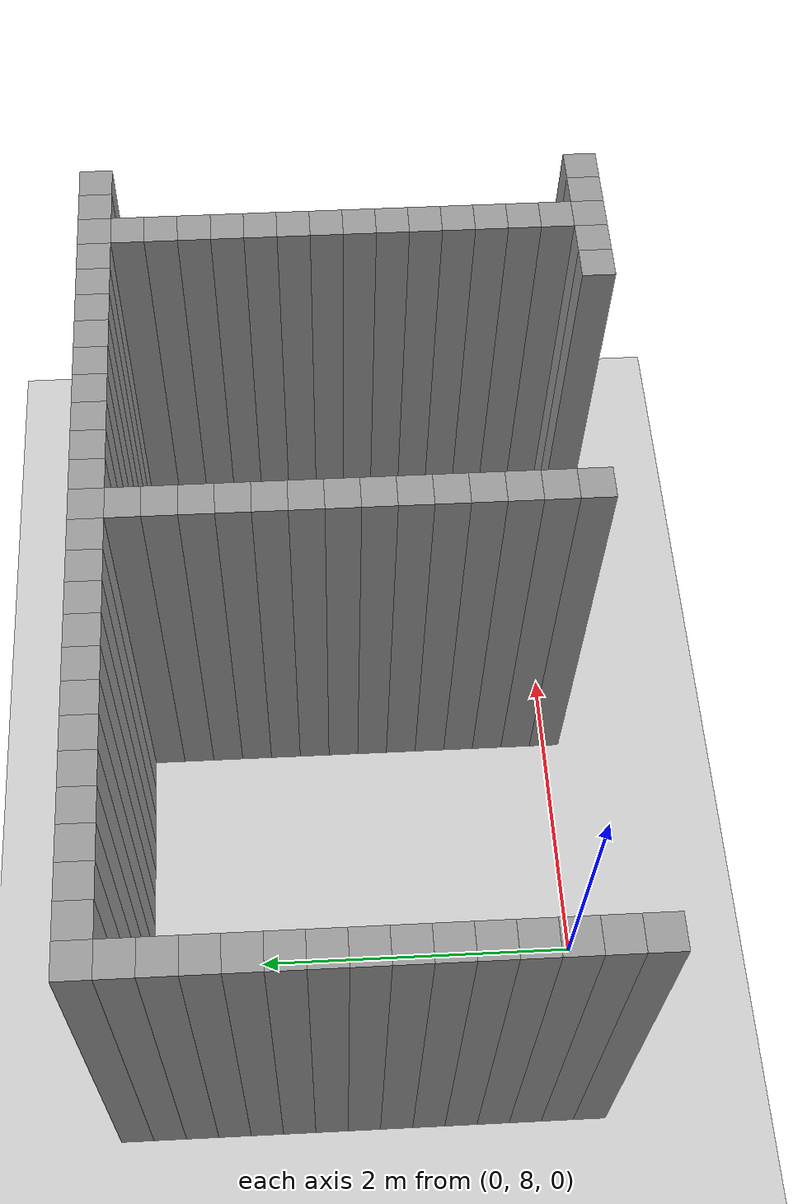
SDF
<sdf version="1.7">
 <world name="default">
  <model name="ground_plane">
   <static>1</static>
   <link name="link">
    <collision name="collision">
     <geometry><plane><normal>0 0 1</normal><size>100 100</size></plane></geometry>
     <surface>
      <contact><collide_bitmask>65535</collide_bitmask></contact>
      <friction><ode><mu>100</mu><mu2>50</mu2></ode></friction>
     </surface>
    </collision>
    <visual name="visual">
     <cast_shadows>0</cast_shadows>
     <geometry><plane><normal>0 0 1</normal><size>100 100</size></plane></geometry>
     <material>
      <script><uri>file://media/materials/scripts/gazebo.material</uri><name>Gazebo/Grey</name></script>
     </material>
    </visual>
   </link>
  </model>
  <model name="image1">
   <pose>-1 -1 0 0 -0 0</pose>
   <link name="Wall_45">
    <collision name="Wall_45_Collision">
     <geometry><box><size>0.2 0.2 3</size></box></geometry>
     <pose>0 0 1.5 0 -0 0</pose>
    </collision>
    <visual name="Wall_45_Visual">
     <pose>0 0 1.5 0 -0 0</pose>
     <geometry><box><size>0.2 0.2 3</size></box></geometry>
     <material>
      <script><uri>file://media/materials/scripts/gazebo.material</uri><name>Gazebo/Grey</name></script>
      <ambient>1 1 1 1</ambient>
     </material>
     <meta><layer>0</layer></meta>
    </visual>
    <pose>0.0 9.0 0 0 -0 0</pose>
   </link>
   <link name="Wall_46">
    <collision name="Wall_46_Collision">
     <geometry><box><size>0.2 0.2 3</size></box></geometry>
     <pose>0 0 1.5 0 -0 0</pose>
    </collision>
    <visual name="Wall_46_Visual">
     <pose>0 0 1.5 0 -0 0</pose>
     <geometry><box><size>0.2 0.2 3</size></box></geometry>
     <material>
      <script><uri>file://media/materials/scripts/gazebo.material</uri><name>Gazebo/Grey</name></script>
      <ambient>1 1 1 1</ambient>
     </material>
     <meta><layer>0</layer></meta>
    </visual>
    <pose>0.0 9.200000000000001 0 0 -0 0</pose>
   </link>
   <link name="Wall_47">
    <collision name="Wall_47_Collision">
     <geometry><box><size>0.2 0.2 3</size></box></geometry>
     <pose>0 0 1.5 0 -0 0</pose>
    </collision>
    <visual name="Wall_47_Visual">
     <pose>0 0 1.5 0 -0 0</pose>
     <geometry><box><size>0.2 0.2 3</size></box></geometry>
     <material>
      <script><uri>file://media/materials/scripts/gazebo.material</uri><name>Gazebo/Grey</name></script>
      <ambient>1 1 1 1</ambient>
     </material>
     <meta><layer>0</layer></meta>
    </visual>
    <pose>0.0 9.4 0 0 -0 0</pose>
   </link>
   <link name="Wall_48">
    <collision name="Wall_48_Collision">
     <geometry><box><size>0.2 0.2 3</size></box></geometry>
     <pose>0 0 1.5 0 -0 0</pose>
    </collision>
    <visual name="Wall_48_Visual">
     <pose>0 0 1.5 0 -0 0</pose>
     <geometry><box><size>0.2 0.2 3</size></box></geometry>
     <material>
      <script><uri>file://media/materials/scripts/gazebo.material</uri><name>Gazebo/Grey</name></script>
      <ambient>1 1 1 1</ambient>
     </material>
     <meta><layer>0</layer></meta>
    </visual>
    <pose>0.0 9.600000000000001 0 0 -0 0</pose>
   </link>
   <link name="Wall_49">
    <collision name="Wall_49_Collision">
     <geometry><box><size>0.2 0.2 3</size></box></geometry>
     <pose>0 0 1.5 0 -0 0</pose>
    </collision>
    <visual name="Wall_49_Visual">
     <pose>0 0 1.5 0 -0 0</pose>
     <geometry><box><size>0.2 0.2 3</size></box></geometry>
     <material>
      <script><uri>file://media/materials/scripts/gazebo.material</uri><name>Gazebo/Grey</name></script>
      <ambient>1 1 1 1</ambient>
     </material>
     <meta><layer>0</layer></meta>
    </visual>
    <pose>0.0 9.8 0 0 -0 0</pose>
   </link>
   <link name="Wall_50">
    <collision name="Wall_50_Collision">
     <geometry><box><size>0.2 0.2 3</size></box></geometry>
     <pose>0 0 1.5 0 -0 0</pose>
    </collision>
    <visual name="Wall_50_Visual">
     <pose>0 0 1.5 0 -0 0</pose>
     <geometry><box><size>0.2 0.2 3</size></box></geometry>
     <material>
      <script><uri>file://media/materials/scripts/gazebo.material</uri><name>Gazebo/Grey</name></script>
      <ambient>1 1 1 1</ambient>
     </material>
     <meta><layer>0</layer></meta>
    </visual>
    <pose>0.0 10.0 0 0 -0 0</pose>
   </link>
   <link name="Wall_51">
    <collision name="Wall_51_Collision">
     <geometry><box><size>0.2 0.2 3</size></box></geometry>
     <pose>0 0 1.5 0 -0 0</pose>
    </collision>
    <visual name="Wall_51_Visual">
     <pose>0 0 1.5 0 -0 0</pose>
     <geometry><box><size>0.2 0.2 3</size></box></geometry>
     <material>
      <script><uri>file://media/materials/scripts/gazebo.material</uri><name>Gazebo/Grey</name></script>
      <ambient>1 1 1 1</ambient>
     </material>
     <meta><layer>0</layer></meta>
    </visual>
    <pose>0.0 10.200000000000001 0 0 -0 0</pose>
   </link>
   <link name="Wall_52">
    <collision name="Wall_52_Collision">
     <geometry><box><size>0.2 0.2 3</size></box></geometry>
     <pose>0 0 1.5 0 -0 0</pose>
    </collision>
    <visual name="Wall_52_Visual">
     <pose>0 0 1.5 0 -0 0</pose>
     <geometry><box><size>0.2 0.2 3</size></box></geometry>
     <material>
      <script><uri>file://media/materials/scripts/gazebo.material</uri><name>Gazebo/Grey</name></script>
      <ambient>1 1 1 1</ambient>
     </material>
     <meta><layer>0</layer></meta>
    </visual>
    <pose>0.0 10.4 0 0 -0 0</pose>
   </link>
   <link name="Wall_53">
    <collision name="Wall_53_Collision">
     <geometry><box><size>0.2 0.2 3</size></box></geometry>
     <pose>0 0 1.5 0 -0 0</pose>
    </collision>
    <visual name="Wall_53_Visual">
     <pose>0 0 1.5 0 -0 0</pose>
     <geometry><box><size>0.2 0.2 3</size></box></geometry>
     <material>
      <script><uri>file://media/materials/scripts/gazebo.material</uri><name>Gazebo/Grey</name></script>
      <ambient>1 1 1 1</ambient>
     </material>
     <meta><layer>0</layer></meta>
    </visual>
    <pose>0.0 10.600000000000001 0 0 -0 0</pose>
   </link>
   <link name="Wall_54">
    <collision name="Wall_54_Collision">
     <geometry><box><size>0.2 0.2 3</size></box></geometry>
     <pose>0 0 1.5 0 -0 0</pose>
    </collision>
    <visual name="Wall_54_Visual">
     <pose>0 0 1.5 0 -0 0</pose>
     <geometry><box><size>0.2 0.2 3</size></box></geometry>
     <material>
      <script><uri>file://media/materials/scripts/gazebo.material</uri><name>Gazebo/Grey</name></script>
      <ambient>1 1 1 1</ambient>
     </material>
     <meta><layer>0</layer></meta>
    </visual>
    <pose>0.0 10.8 0 0 -0 0</pose>
   </link>
   <link name="Wall_55">
    <collision name="Wall_55_Collision">
     <geometry><box><size>0.2 0.2 3</size></box></geometry>
     <pose>0 0 1.5 0 -0 0</pose>
    </collision>
    <visual name="Wall_55_Visual">
     <pose>0 0 1.5 0 -0 0</pose>
     <geometry><box><size>0.2 0.2 3</size></box></geometry>
     <material>
      <script><uri>file://media/materials/scripts/gazebo.material</uri><name>Gazebo/Grey</name></script>
      <ambient>1 1 1 1</ambient>
     </material>
     <meta><layer>0</layer></meta>
    </visual>
    <pose>0.0 11.0 0 0 -0 0</pose>
   </link>
   <link name="Wall_56">
    <collision name="Wall_56_Collision">
     <geometry><box><size>0.2 0.2 3</size></box></geometry>
     <pose>0 0 1.5 0 -0 0</pose>
    </collision>
    <visual name="Wall_56_Visual">
     <pose>0 0 1.5 0 -0 0</pose>
     <geometry><box><size>0.2 0.2 3</size></box></geometry>
     <material>
      <script><uri>file://media/materials/scripts/gazebo.material</uri><name>Gazebo/Grey</name></script>
      <ambient>1 1 1 1</ambient>
     </material>
     <meta><layer>0</layer></meta>
    </visual>
    <pose>0.0 11.200000000000001 0 0 -0 0</pose>
   </link>
   <link name="Wall_57">
    <collision name="Wall_57_Collision">
     <geometry><box><size>0.2 0.2 3</size></box></geometry>
     <pose>0 0 1.5 0 -0 0</pose>
    </collision>
    <visual name="Wall_57_Visual">
     <pose>0 0 1.5 0 -0 0</pose>
     <geometry><box><size>0.2 0.2 3</size></box></geometry>
     <material>
      <script><uri>file://media/materials/scripts/gazebo.material</uri><name>Gazebo/Grey</name></script>
      <ambient>1 1 1 1</ambient>
     </material>
     <meta><layer>0</layer></meta>
    </visual>
    <pose>0.0 11.4 0 0 -0 0</pose>
   </link>
   <link name="Wall_58">
    <collision name="Wall_58_Collision">
     <geometry><box><size>0.2 0.2 3</size></box></geometry>
     <pose>0 0 1.5 0 -0 0</pose>
    </collision>
    <visual name="Wall_58_Visual">
     <pose>0 0 1.5 0 -0 0</pose>
     <geometry><box><size>0.2 0.2 3</size></box></geometry>
     <material>
      <script><uri>file://media/materials/scripts/gazebo.material</uri><name>Gazebo/Grey</name></script>
      <ambient>1 1 1 1</ambient>
     </material>
     <meta><layer>0</layer></meta>
    </visual>
    <pose>0.0 11.600000000000001 0 0 -0 0</pose>
   </link>
   <link name="Wall_59">
    <collision name="Wall_59_Collision">
     <geometry><box><size>0.2 0.2 3</size></box></geometry>
     <pose>0 0 1.5 0 -0 0</pose>
    </collision>
    <visual name="Wall_59_Visual">
     <pose>0 0 1.5 0 -0 0</pose>
     <geometry><box><size>0.2 0.2 3</size></box></geometry>
     <material>
      <script><uri>file://media/materials/scripts/gazebo.material</uri><name>Gazebo/Grey</name></script>
      <ambient>1 1 1 1</ambient>
     </material>
     <meta><layer>0</layer></meta>
    </visual>
    <pose>0.0 11.8 0 0 -0 0</pose>
   </link>
   <link name="Wall_64">
    <collision name="Wall_64_Collision">
     <geometry><box><size>0.2 0.2 3</size></box></geometry>
     <pose>0 0 1.5 0 -0 0</pose>
    </collision>
    <visual name="Wall_64_Visual">
     <pose>0 0 1.5 0 -0 0</pose>
     <geometry><box><size>0.2 0.2 3</size></box></geometry>
     <material>
      <script><uri>file://media/materials/scripts/gazebo.material</uri><name>Gazebo/Grey</name></script>
      <ambient>1 1 1 1</ambient>
     </material>
     <meta><layer>0</layer></meta>
    </visual>
    <pose>0.2 11.8 0 0 -0 0</pose>
   </link>
   <link name="Wall_69">
    <collision name="Wall_69_Collision">
     <geometry><box><size>0.2 0.2 3</size></box></geometry>
     <pose>0 0 1.5 0 -0 0</pose>
    </collision>
    <visual name="Wall_69_Visual">
     <pose>0 0 1.5 0 -0 0</pose>
     <geometry><box><size>0.2 0.2 3</size></box></geometry>
     <material>
      <script><uri>file://media/materials/scripts/gazebo.material</uri><name>Gazebo/Grey</name></script>
      <ambient>1 1 1 1</ambient>
     </material>
     <meta><layer>0</layer></meta>
    </visual>
    <pose>0.4 11.8 0 0 -0 0</pose>
   </link>
   <link name="Wall_74">
    <collision name="Wall_74_Collision">
     <geometry><box><size>0.2 0.2 3</size></box></geometry>
     <pose>0 0 1.5 0 -0 0</pose>
    </collision>
    <visual name="Wall_74_Visual">
     <pose>0 0 1.5 0 -0 0</pose>
     <geometry><box><size>0.2 0.2 3</size></box></geometry>
     <material>
      <script><uri>file://media/materials/scripts/gazebo.material</uri><name>Gazebo/Grey</name></script>
      <ambient>1 1 1 1</ambient>
     </material>
     <meta><layer>0</layer></meta>
    </visual>
    <pose>0.6000000000000001 11.8 0 0 -0 0</pose>
   </link>
   <link name="Wall_78">
    <collision name="Wall_78_Collision">
     <geometry><box><size>0.2 0.2 3</size></box></geometry>
     <pose>0 0 1.5 0 -0 0</pose>
    </collision>
    <visual name="Wall_78_Visual">
     <pose>0 0 1.5 0 -0 0</pose>
     <geometry><box><size>0.2 0.2 3</size></box></geometry>
     <material>
      <script><uri>file://media/materials/scripts/gazebo.material</uri><name>Gazebo/Grey</name></script>
      <ambient>1 1 1 1</ambient>
     </material>
     <meta><layer>0</layer></meta>
    </visual>
    <pose>0.8 11.8 0 0 -0 0</pose>
   </link>
   <link name="Wall_82">
    <collision name="Wall_82_Collision">
     <geometry><box><size>0.2 0.2 3</size></box></geometry>
     <pose>0 0 1.5 0 -0 0</pose>
    </collision>
    <visual name="Wall_82_Visual">
     <pose>0 0 1.5 0 -0 0</pose>
     <geometry><box><size>0.2 0.2 3</size></box></geometry>
     <material>
      <script><uri>file://media/materials/scripts/gazebo.material</uri><name>Gazebo/Grey</name></script>
      <ambient>1 1 1 1</ambient>
     </material>
     <meta><layer>0</layer></meta>
    </visual>
    <pose>1.0 11.8 0 0 -0 0</pose>
   </link>
   <link name="Wall_86">
    <collision name="Wall_86_Collision">
     <geometry><box><size>0.2 0.2 3</size></box></geometry>
     <pose>0 0 1.5 0 -0 0</pose>
    </collision>
    <visual name="Wall_86_Visual">
     <pose>0 0 1.5 0 -0 0</pose>
     <geometry><box><size>0.2 0.2 3</size></box></geometry>
     <material>
      <script><uri>file://media/materials/scripts/gazebo.material</uri><name>Gazebo/Grey</name></script>
      <ambient>1 1 1 1</ambient>
     </material>
     <meta><layer>0</layer></meta>
    </visual>
    <pose>1.2000000000000002 11.8 0 0 -0 0</pose>
   </link>
   <link name="Wall_90">
    <collision name="Wall_90_Collision">
     <geometry><box><size>0.2 0.2 3</size></box></geometry>
     <pose>0 0 1.5 0 -0 0</pose>
    </collision>
    <visual name="Wall_90_Visual">
     <pose>0 0 1.5 0 -0 0</pose>
     <geometry><box><size>0.2 0.2 3</size></box></geometry>
     <material>
      <script><uri>file://media/materials/scripts/gazebo.material</uri><name>Gazebo/Grey</name></script>
      <ambient>1 1 1 1</ambient>
     </material>
     <meta><layer>0</layer></meta>
    </visual>
    <pose>1.4000000000000001 11.8 0 0 -0 0</pose>
   </link>
   <link name="Wall_94">
    <collision name="Wall_94_Collision">
     <geometry><box><size>0.2 0.2 3</size></box></geometry>
     <pose>0 0 1.5 0 -0 0</pose>
    </collision>
    <visual name="Wall_94_Visual">
     <pose>0 0 1.5 0 -0 0</pose>
     <geometry><box><size>0.2 0.2 3</size></box></geometry>
     <material>
      <script><uri>file://media/materials/scripts/gazebo.material</uri><name>Gazebo/Grey</name></script>
      <ambient>1 1 1 1</ambient>
     </material>
     <meta><layer>0</layer></meta>
    </visual>
    <pose>1.6 11.8 0 0 -0 0</pose>
   </link>
   <link name="Wall_116">
    <collision name="Wall_116_Collision">
     <geometry><box><size>0.2 0.2 3</size></box></geometry>
     <pose>0 0 1.5 0 -0 0</pose>
    </collision>
    <visual name="Wall_116_Visual">
     <pose>0 0 1.5 0 -0 0</pose>
     <geometry><box><size>0.2 0.2 3</size></box></geometry>
     <material>
      <script><uri>file://media/materials/scripts/gazebo.material</uri><name>Gazebo/Grey</name></script>
      <ambient>1 1 1 1</ambient>
     </material>
     <meta><layer>0</layer></meta>
    </visual>
    <pose>1.8 11.8 0 0 -0 0</pose>
   </link>
   <link name="Wall_121">
    <collision name="Wall_121_Collision">
     <geometry><box><size>0.2 0.2 3</size></box></geometry>
     <pose>0 0 1.5 0 -0 0</pose>
    </collision>
    <visual name="Wall_121_Visual">
     <pose>0 0 1.5 0 -0 0</pose>
     <geometry><box><size>0.2 0.2 3</size></box></geometry>
     <material>
      <script><uri>file://media/materials/scripts/gazebo.material</uri><name>Gazebo/Grey</name></script>
      <ambient>1 1 1 1</ambient>
     </material>
     <meta><layer>0</layer></meta>
    </visual>
    <pose>2.0 11.8 0 0 -0 0</pose>
   </link>
   <link name="Wall_126">
    <collision name="Wall_126_Collision">
     <geometry><box><size>0.2 0.2 3</size></box></geometry>
     <pose>0 0 1.5 0 -0 0</pose>
    </collision>
    <visual name="Wall_126_Visual">
     <pose>0 0 1.5 0 -0 0</pose>
     <geometry><box><size>0.2 0.2 3</size></box></geometry>
     <material>
      <script><uri>file://media/materials/scripts/gazebo.material</uri><name>Gazebo/Grey</name></script>
      <ambient>1 1 1 1</ambient>
     </material>
     <meta><layer>0</layer></meta>
    </visual>
    <pose>2.2 11.8 0 0 -0 0</pose>
   </link>
   <link name="Wall_131">
    <collision name="Wall_131_Collision">
     <geometry><box><size>0.2 0.2 3</size></box></geometry>
     <pose>0 0 1.5 0 -0 0</pose>
    </collision>
    <visual name="Wall_131_Visual">
     <pose>0 0 1.5 0 -0 0</pose>
     <geometry><box><size>0.2 0.2 3</size></box></geometry>
     <material>
      <script><uri>file://media/materials/scripts/gazebo.material</uri><name>Gazebo/Grey</name></script>
      <ambient>1 1 1 1</ambient>
     </material>
     <meta><layer>0</layer></meta>
    </visual>
    <pose>2.4000000000000004 11.8 0 0 -0 0</pose>
   </link>
   <link name="Wall_136">
    <collision name="Wall_136_Collision">
     <geometry><box><size>0.2 0.2 3</size></box></geometry>
     <pose>0 0 1.5 0 -0 0</pose>
    </collision>
    <visual name="Wall_136_Visual">
     <pose>0 0 1.5 0 -0 0</pose>
     <geometry><box><size>0.2 0.2 3</size></box></geometry>
     <material>
      <script><uri>file://media/materials/scripts/gazebo.material</uri><name>Gazebo/Grey</name></script>
      <ambient>1 1 1 1</ambient>
     </material>
     <meta><layer>0</layer></meta>
    </visual>
    <pose>2.6 9.0 0 0 -0 0</pose>
   </link>
   <link name="Wall_137">
    <collision name="Wall_137_Collision">
     <geometry><box><size>0.2 0.2 3</size></box></geometry>
     <pose>0 0 1.5 0 -0 0</pose>
    </collision>
    <visual name="Wall_137_Visual">
     <pose>0 0 1.5 0 -0 0</pose>
     <geometry><box><size>0.2 0.2 3</size></box></geometry>
     <material>
      <script><uri>file://media/materials/scripts/gazebo.material</uri><name>Gazebo/Grey</name></script>
      <ambient>1 1 1 1</ambient>
     </material>
     <meta><layer>0</layer></meta>
    </visual>
    <pose>2.6 9.200000000000001 0 0 -0 0</pose>
   </link>
   <link name="Wall_138">
    <collision name="Wall_138_Collision">
     <geometry><box><size>0.2 0.2 3</size></box></geometry>
     <pose>0 0 1.5 0 -0 0</pose>
    </collision>
    <visual name="Wall_138_Visual">
     <pose>0 0 1.5 0 -0 0</pose>
     <geometry><box><size>0.2 0.2 3</size></box></geometry>
     <material>
      <script><uri>file://media/materials/scripts/gazebo.material</uri><name>Gazebo/Grey</name></script>
      <ambient>1 1 1 1</ambient>
     </material>
     <meta><layer>0</layer></meta>
    </visual>
    <pose>2.6 9.4 0 0 -0 0</pose>
   </link>
   <link name="Wall_139">
    <collision name="Wall_139_Collision">
     <geometry><box><size>0.2 0.2 3</size></box></geometry>
     <pose>0 0 1.5 0 -0 0</pose>
    </collision>
    <visual name="Wall_139_Visual">
     <pose>0 0 1.5 0 -0 0</pose>
     <geometry><box><size>0.2 0.2 3</size></box></geometry>
     <material>
      <script><uri>file://media/materials/scripts/gazebo.material</uri><name>Gazebo/Grey</name></script>
      <ambient>1 1 1 1</ambient>
     </material>
     <meta><layer>0</layer></meta>
    </visual>
    <pose>2.6 9.600000000000001 0 0 -0 0</pose>
   </link>
   <link name="Wall_140">
    <collision name="Wall_140_Collision">
     <geometry><box><size>0.2 0.2 3</size></box></geometry>
     <pose>0 0 1.5 0 -0 0</pose>
    </collision>
    <visual name="Wall_140_Visual">
     <pose>0 0 1.5 0 -0 0</pose>
     <geometry><box><size>0.2 0.2 3</size></box></geometry>
     <material>
      <script><uri>file://media/materials/scripts/gazebo.material</uri><name>Gazebo/Grey</name></script>
      <ambient>1 1 1 1</ambient>
     </material>
     <meta><layer>0</layer></meta>
    </visual>
    <pose>2.6 9.8 0 0 -0 0</pose>
   </link>
   <link name="Wall_141">
    <collision name="Wall_141_Collision">
     <geometry><box><size>0.2 0.2 3</size></box></geometry>
     <pose>0 0 1.5 0 -0 0</pose>
    </collision>
    <visual name="Wall_141_Visual">
     <pose>0 0 1.5 0 -0 0</pose>
     <geometry><box><size>0.2 0.2 3</size></box></geometry>
     <material>
      <script><uri>file://media/materials/scripts/gazebo.material</uri><name>Gazebo/Grey</name></script>
      <ambient>1 1 1 1</ambient>
     </material>
     <meta><layer>0</layer></meta>
    </visual>
    <pose>2.6 10.0 0 0 -0 0</pose>
   </link>
   <link name="Wall_142">
    <collision name="Wall_142_Collision">
     <geometry><box><size>0.2 0.2 3</size></box></geometry>
     <pose>0 0 1.5 0 -0 0</pose>
    </collision>
    <visual name="Wall_142_Visual">
     <pose>0 0 1.5 0 -0 0</pose>
     <geometry><box><size>0.2 0.2 3</size></box></geometry>
     <material>
      <script><uri>file://media/materials/scripts/gazebo.material</uri><name>Gazebo/Grey</name></script>
      <ambient>1 1 1 1</ambient>
     </material>
     <meta><layer>0</layer></meta>
    </visual>
    <pose>2.6 10.200000000000001 0 0 -0 0</pose>
   </link>
   <link name="Wall_143">
    <collision name="Wall_143_Collision">
     <geometry><box><size>0.2 0.2 3</size></box></geometry>
     <pose>0 0 1.5 0 -0 0</pose>
    </collision>
    <visual name="Wall_143_Visual">
     <pose>0 0 1.5 0 -0 0</pose>
     <geometry><box><size>0.2 0.2 3</size></box></geometry>
     <material>
      <script><uri>file://media/materials/scripts/gazebo.material</uri><name>Gazebo/Grey</name></script>
      <ambient>1 1 1 1</ambient>
     </material>
     <meta><layer>0</layer></meta>
    </visual>
    <pose>2.6 10.4 0 0 -0 0</pose>
   </link>
   <link name="Wall_144">
    <collision name="Wall_144_Collision">
     <geometry><box><size>0.2 0.2 3</size></box></geometry>
     <pose>0 0 1.5 0 -0 0</pose>
    </collision>
    <visual name="Wall_144_Visual">
     <pose>0 0 1.5 0 -0 0</pose>
     <geometry><box><size>0.2 0.2 3</size></box></geometry>
     <material>
      <script><uri>file://media/materials/scripts/gazebo.material</uri><name>Gazebo/Grey</name></script>
      <ambient>1 1 1 1</ambient>
     </material>
     <meta><layer>0</layer></meta>
    </visual>
    <pose>2.6 10.600000000000001 0 0 -0 0</pose>
   </link>
   <link name="Wall_145">
    <collision name="Wall_145_Collision">
     <geometry><box><size>0.2 0.2 3</size></box></geometry>
     <pose>0 0 1.5 0 -0 0</pose>
    </collision>
    <visual name="Wall_145_Visual">
     <pose>0 0 1.5 0 -0 0</pose>
     <geometry><box><size>0.2 0.2 3</size></box></geometry>
     <material>
      <script><uri>file://media/materials/scripts/gazebo.material</uri><name>Gazebo/Grey</name></script>
      <ambient>1 1 1 1</ambient>
     </material>
     <meta><layer>0</layer></meta>
    </visual>
    <pose>2.6 10.8 0 0 -0 0</pose>
   </link>
   <link name="Wall_146">
    <collision name="Wall_146_Collision">
     <geometry><box><size>0.2 0.2 3</size></box></geometry>
     <pose>0 0 1.5 0 -0 0</pose>
    </collision>
    <visual name="Wall_146_Visual">
     <pose>0 0 1.5 0 -0 0</pose>
     <geometry><box><size>0.2 0.2 3</size></box></geometry>
     <material>
      <script><uri>file://media/materials/scripts/gazebo.material</uri><name>Gazebo/Grey</name></script>
      <ambient>1 1 1 1</ambient>
     </material>
     <meta><layer>0</layer></meta>
    </visual>
    <pose>2.6 11.0 0 0 -0 0</pose>
   </link>
   <link name="Wall_147">
    <collision name="Wall_147_Collision">
     <geometry><box><size>0.2 0.2 3</size></box></geometry>
     <pose>0 0 1.5 0 -0 0</pose>
    </collision>
    <visual name="Wall_147_Visual">
     <pose>0 0 1.5 0 -0 0</pose>
     <geometry><box><size>0.2 0.2 3</size></box></geometry>
     <material>
      <script><uri>file://media/materials/scripts/gazebo.material</uri><name>Gazebo/Grey</name></script>
      <ambient>1 1 1 1</ambient>
     </material>
     <meta><layer>0</layer></meta>
    </visual>
    <pose>2.6 11.200000000000001 0 0 -0 0</pose>
   </link>
   <link name="Wall_148">
    <collision name="Wall_148_Collision">
     <geometry><box><size>0.2 0.2 3</size></box></geometry>
     <pose>0 0 1.5 0 -0 0</pose>
    </collision>
    <visual name="Wall_148_Visual">
     <pose>0 0 1.5 0 -0 0</pose>
     <geometry><box><size>0.2 0.2 3</size></box></geometry>
     <material>
      <script><uri>file://media/materials/scripts/gazebo.material</uri><name>Gazebo/Grey</name></script>
      <ambient>1 1 1 1</ambient>
     </material>
     <meta><layer>0</layer></meta>
    </visual>
    <pose>2.6 11.4 0 0 -0 0</pose>
   </link>
   <link name="Wall_149">
    <collision name="Wall_149_Collision">
     <geometry><box><size>0.2 0.2 3</size></box></geometry>
     <pose>0 0 1.5 0 -0 0</pose>
    </collision>
    <visual name="Wall_149_Visual">
     <pose>0 0 1.5 0 -0 0</pose>
     <geometry><box><size>0.2 0.2 3</size></box></geometry>
     <material>
      <script><uri>file://media/materials/scripts/gazebo.material</uri><name>Gazebo/Grey</name></script>
      <ambient>1 1 1 1</ambient>
     </material>
     <meta><layer>0</layer></meta>
    </visual>
    <pose>2.6 11.600000000000001 0 0 -0 0</pose>
   </link>
   <link name="Wall_150">
    <collision name="Wall_150_Collision">
     <geometry><box><size>0.2 0.2 3</size></box></geometry>
     <pose>0 0 1.5 0 -0 0</pose>
    </collision>
    <visual name="Wall_150_Visual">
     <pose>0 0 1.5 0 -0 0</pose>
     <geometry><box><size>0.2 0.2 3</size></box></geometry>
     <material>
      <script><uri>file://media/materials/scripts/gazebo.material</uri><name>Gazebo/Grey</name></script>
      <ambient>1 1 1 1</ambient>
     </material>
     <meta><layer>0</layer></meta>
    </visual>
    <pose>2.6 11.8 0 0 -0 0</pose>
   </link>
   <link name="Wall_155">
    <collision name="Wall_155_Collision">
     <geometry><box><size>0.2 0.2 3</size></box></geometry>
     <pose>0 0 1.5 0 -0 0</pose>
    </collision>
    <visual name="Wall_155_Visual">
     <pose>0 0 1.5 0 -0 0</pose>
     <geometry><box><size>0.2 0.2 3</size></box></geometry>
     <material>
      <script><uri>file://media/materials/scripts/gazebo.material</uri><name>Gazebo/Grey</name></script>
      <ambient>1 1 1 1</ambient>
     </material>
     <meta><layer>0</layer></meta>
    </visual>
    <pose>2.8000000000000003 11.8 0 0 -0 0</pose>
   </link>
   <link name="Wall_161">
    <collision name="Wall_161_Collision">
     <geometry><box><size>0.2 0.2 3</size></box></geometry>
     <pose>0 0 1.5 0 -0 0</pose>
    </collision>
    <visual name="Wall_161_Visual">
     <pose>0 0 1.5 0 -0 0</pose>
     <geometry><box><size>0.2 0.2 3</size></box></geometry>
     <material>
      <script><uri>file://media/materials/scripts/gazebo.material</uri><name>Gazebo/Grey</name></script>
      <ambient>1 1 1 1</ambient>
     </material>
     <meta><layer>0</layer></meta>
    </visual>
    <pose>3.0 11.8 0 0 -0 0</pose>
   </link>
   <link name="Wall_163">
    <collision name="Wall_163_Collision">
     <geometry><box><size>0.2 0.2 3</size></box></geometry>
     <pose>0 0 1.5 0 -0 0</pose>
    </collision>
    <visual name="Wall_163_Visual">
     <pose>0 0 1.5 0 -0 0</pose>
     <geometry><box><size>0.2 0.2 3</size></box></geometry>
     <material>
      <script><uri>file://media/materials/scripts/gazebo.material</uri><name>Gazebo/Grey</name></script>
      <ambient>1 1 1 1</ambient>
     </material>
     <meta><layer>0</layer></meta>
    </visual>
    <pose>3.2 11.8 0 0 -0 0</pose>
   </link>
   <link name="Wall_165">
    <collision name="Wall_165_Collision">
     <geometry><box><size>0.2 0.2 3</size></box></geometry>
     <pose>0 0 1.5 0 -0 0</pose>
    </collision>
    <visual name="Wall_165_Visual">
     <pose>0 0 1.5 0 -0 0</pose>
     <geometry><box><size>0.2 0.2 3</size></box></geometry>
     <material>
      <script><uri>file://media/materials/scripts/gazebo.material</uri><name>Gazebo/Grey</name></script>
      <ambient>1 1 1 1</ambient>
     </material>
     <meta><layer>0</layer></meta>
    </visual>
    <pose>3.4000000000000004 11.8 0 0 -0 0</pose>
   </link>
   <link name="Wall_185">
    <collision name="Wall_185_Collision">
     <geometry><box><size>0.2 0.2 3</size></box></geometry>
     <pose>0 0 1.5 0 -0 0</pose>
    </collision>
    <visual name="Wall_185_Visual">
     <pose>0 0 1.5 0 -0 0</pose>
     <geometry><box><size>0.2 0.2 3</size></box></geometry>
     <material>
      <script><uri>file://media/materials/scripts/gazebo.material</uri><name>Gazebo/Grey</name></script>
      <ambient>1 1 1 1</ambient>
     </material>
     <meta><layer>0</layer></meta>
    </visual>
    <pose>3.6 11.8 0 0 -0 0</pose>
   </link>
   <link name="Wall_187">
    <collision name="Wall_187_Collision">
     <geometry><box><size>0.2 0.2 3</size></box></geometry>
     <pose>0 0 1.5 0 -0 0</pose>
    </collision>
    <visual name="Wall_187_Visual">
     <pose>0 0 1.5 0 -0 0</pose>
     <geometry><box><size>0.2 0.2 3</size></box></geometry>
     <material>
      <script><uri>file://media/materials/scripts/gazebo.material</uri><name>Gazebo/Grey</name></script>
      <ambient>1 1 1 1</ambient>
     </material>
     <meta><layer>0</layer></meta>
    </visual>
    <pose>3.8000000000000003 11.8 0 0 -0 0</pose>
   </link>
   <link name="Wall_189">
    <collision name="Wall_189_Collision">
     <geometry><box><size>0.2 0.2 3</size></box></geometry>
     <pose>0 0 1.5 0 -0 0</pose>
    </collision>
    <visual name="Wall_189_Visual">
     <pose>0 0 1.5 0 -0 0</pose>
     <geometry><box><size>0.2 0.2 3</size></box></geometry>
     <material>
      <script><uri>file://media/materials/scripts/gazebo.material</uri><name>Gazebo/Grey</name></script>
      <ambient>1 1 1 1</ambient>
     </material>
     <meta><layer>0</layer></meta>
    </visual>
    <pose>4.0 11.8 0 0 -0 0</pose>
   </link>
   <link name="Wall_191">
    <collision name="Wall_191_Collision">
     <geometry><box><size>0.2 0.2 3</size></box></geometry>
     <pose>0 0 1.5 0 -0 0</pose>
    </collision>
    <visual name="Wall_191_Visual">
     <pose>0 0 1.5 0 -0 0</pose>
     <geometry><box><size>0.2 0.2 3</size></box></geometry>
     <material>
      <script><uri>file://media/materials/scripts/gazebo.material</uri><name>Gazebo/Grey</name></script>
      <ambient>1 1 1 1</ambient>
     </material>
     <meta><layer>0</layer></meta>
    </visual>
    <pose>4.2 8.8 0 0 -0 0</pose>
   </link>
   <link name="Wall_192">
    <collision name="Wall_192_Collision">
     <geometry><box><size>0.2 0.2 3</size></box></geometry>
     <pose>0 0 1.5 0 -0 0</pose>
    </collision>
    <visual name="Wall_192_Visual">
     <pose>0 0 1.5 0 -0 0</pose>
     <geometry><box><size>0.2 0.2 3</size></box></geometry>
     <material>
      <script><uri>file://media/materials/scripts/gazebo.material</uri><name>Gazebo/Grey</name></script>
      <ambient>1 1 1 1</ambient>
     </material>
     <meta><layer>0</layer></meta>
    </visual>
    <pose>4.2 11.8 0 0 -0 0</pose>
   </link>
   <link name="Wall_194">
    <collision name="Wall_194_Collision">
     <geometry><box><size>0.2 0.2 3</size></box></geometry>
     <pose>0 0 1.5 0 -0 0</pose>
    </collision>
    <visual name="Wall_194_Visual">
     <pose>0 0 1.5 0 -0 0</pose>
     <geometry><box><size>0.2 0.2 3</size></box></geometry>
     <material>
      <script><uri>file://media/materials/scripts/gazebo.material</uri><name>Gazebo/Grey</name></script>
      <ambient>1 1 1 1</ambient>
     </material>
     <meta><layer>0</layer></meta>
    </visual>
    <pose>4.4 8.8 0 0 -0 0</pose>
   </link>
   <link name="Wall_195">
    <collision name="Wall_195_Collision">
     <geometry><box><size>0.2 0.2 3</size></box></geometry>
     <pose>0 0 1.5 0 -0 0</pose>
    </collision>
    <visual name="Wall_195_Visual">
     <pose>0 0 1.5 0 -0 0</pose>
     <geometry><box><size>0.2 0.2 3</size></box></geometry>
     <material>
      <script><uri>file://media/materials/scripts/gazebo.material</uri><name>Gazebo/Grey</name></script>
      <ambient>1 1 1 1</ambient>
     </material>
     <meta><layer>0</layer></meta>
    </visual>
    <pose>4.4 11.8 0 0 -0 0</pose>
   </link>
   <link name="Wall_197">
    <collision name="Wall_197_Collision">
     <geometry><box><size>0.2 0.2 3</size></box></geometry>
     <pose>0 0 1.5 0 -0 0</pose>
    </collision>
    <visual name="Wall_197_Visual">
     <pose>0 0 1.5 0 -0 0</pose>
     <geometry><box><size>0.2 0.2 3</size></box></geometry>
     <material>
      <script><uri>file://media/materials/scripts/gazebo.material</uri><name>Gazebo/Grey</name></script>
      <ambient>1 1 1 1</ambient>
     </material>
     <meta><layer>0</layer></meta>
    </visual>
    <pose>4.6000000000000005 8.8 0 0 -0 0</pose>
   </link>
   <link name="Wall_198">
    <collision name="Wall_198_Collision">
     <geometry><box><size>0.2 0.2 3</size></box></geometry>
     <pose>0 0 1.5 0 -0 0</pose>
    </collision>
    <visual name="Wall_198_Visual">
     <pose>0 0 1.5 0 -0 0</pose>
     <geometry><box><size>0.2 0.2 3</size></box></geometry>
     <material>
      <script><uri>file://media/materials/scripts/gazebo.material</uri><name>Gazebo/Grey</name></script>
      <ambient>1 1 1 1</ambient>
     </material>
     <meta><layer>0</layer></meta>
    </visual>
    <pose>4.6000000000000005 9.0 0 0 -0 0</pose>
   </link>
   <link name="Wall_199">
    <collision name="Wall_199_Collision">
     <geometry><box><size>0.2 0.2 3</size></box></geometry>
     <pose>0 0 1.5 0 -0 0</pose>
    </collision>
    <visual name="Wall_199_Visual">
     <pose>0 0 1.5 0 -0 0</pose>
     <geometry><box><size>0.2 0.2 3</size></box></geometry>
     <material>
      <script><uri>file://media/materials/scripts/gazebo.material</uri><name>Gazebo/Grey</name></script>
      <ambient>1 1 1 1</ambient>
     </material>
     <meta><layer>0</layer></meta>
    </visual>
    <pose>4.6000000000000005 9.200000000000001 0 0 -0 0</pose>
   </link>
   <link name="Wall_200">
    <collision name="Wall_200_Collision">
     <geometry><box><size>0.2 0.2 3</size></box></geometry>
     <pose>0 0 1.5 0 -0 0</pose>
    </collision>
    <visual name="Wall_200_Visual">
     <pose>0 0 1.5 0 -0 0</pose>
     <geometry><box><size>0.2 0.2 3</size></box></geometry>
     <material>
      <script><uri>file://media/materials/scripts/gazebo.material</uri><name>Gazebo/Grey</name></script>
      <ambient>1 1 1 1</ambient>
     </material>
     <meta><layer>0</layer></meta>
    </visual>
    <pose>4.6000000000000005 9.4 0 0 -0 0</pose>
   </link>
   <link name="Wall_201">
    <collision name="Wall_201_Collision">
     <geometry><box><size>0.2 0.2 3</size></box></geometry>
     <pose>0 0 1.5 0 -0 0</pose>
    </collision>
    <visual name="Wall_201_Visual">
     <pose>0 0 1.5 0 -0 0</pose>
     <geometry><box><size>0.2 0.2 3</size></box></geometry>
     <material>
      <script><uri>file://media/materials/scripts/gazebo.material</uri><name>Gazebo/Grey</name></script>
      <ambient>1 1 1 1</ambient>
     </material>
     <meta><layer>0</layer></meta>
    </visual>
    <pose>4.6000000000000005 9.600000000000001 0 0 -0 0</pose>
   </link>
   <link name="Wall_202">
    <collision name="Wall_202_Collision">
     <geometry><box><size>0.2 0.2 3</size></box></geometry>
     <pose>0 0 1.5 0 -0 0</pose>
    </collision>
    <visual name="Wall_202_Visual">
     <pose>0 0 1.5 0 -0 0</pose>
     <geometry><box><size>0.2 0.2 3</size></box></geometry>
     <material>
      <script><uri>file://media/materials/scripts/gazebo.material</uri><name>Gazebo/Grey</name></script>
      <ambient>1 1 1 1</ambient>
     </material>
     <meta><layer>0</layer></meta>
    </visual>
    <pose>4.6000000000000005 9.8 0 0 -0 0</pose>
   </link>
   <link name="Wall_203">
    <collision name="Wall_203_Collision">
     <geometry><box><size>0.2 0.2 3</size></box></geometry>
     <pose>0 0 1.5 0 -0 0</pose>
    </collision>
    <visual name="Wall_203_Visual">
     <pose>0 0 1.5 0 -0 0</pose>
     <geometry><box><size>0.2 0.2 3</size></box></geometry>
     <material>
      <script><uri>file://media/materials/scripts/gazebo.material</uri><name>Gazebo/Grey</name></script>
      <ambient>1 1 1 1</ambient>
     </material>
     <meta><layer>0</layer></meta>
    </visual>
    <pose>4.6000000000000005 10.0 0 0 -0 0</pose>
   </link>
   <link name="Wall_204">
    <collision name="Wall_204_Collision">
     <geometry><box><size>0.2 0.2 3</size></box></geometry>
     <pose>0 0 1.5 0 -0 0</pose>
    </collision>
    <visual name="Wall_204_Visual">
     <pose>0 0 1.5 0 -0 0</pose>
     <geometry><box><size>0.2 0.2 3</size></box></geometry>
     <material>
      <script><uri>file://media/materials/scripts/gazebo.material</uri><name>Gazebo/Grey</name></script>
      <ambient>1 1 1 1</ambient>
     </material>
     <meta><layer>0</layer></meta>
    </visual>
    <pose>4.6000000000000005 10.200000000000001 0 0 -0 0</pose>
   </link>
   <link name="Wall_205">
    <collision name="Wall_205_Collision">
     <geometry><box><size>0.2 0.2 3</size></box></geometry>
     <pose>0 0 1.5 0 -0 0</pose>
    </collision>
    <visual name="Wall_205_Visual">
     <pose>0 0 1.5 0 -0 0</pose>
     <geometry><box><size>0.2 0.2 3</size></box></geometry>
     <material>
      <script><uri>file://media/materials/scripts/gazebo.material</uri><name>Gazebo/Grey</name></script>
      <ambient>1 1 1 1</ambient>
     </material>
     <meta><layer>0</layer></meta>
    </visual>
    <pose>4.6000000000000005 10.4 0 0 -0 0</pose>
   </link>
   <link name="Wall_206">
    <collision name="Wall_206_Collision">
     <geometry><box><size>0.2 0.2 3</size></box></geometry>
     <pose>0 0 1.5 0 -0 0</pose>
    </collision>
    <visual name="Wall_206_Visual">
     <pose>0 0 1.5 0 -0 0</pose>
     <geometry><box><size>0.2 0.2 3</size></box></geometry>
     <material>
      <script><uri>file://media/materials/scripts/gazebo.material</uri><name>Gazebo/Grey</name></script>
      <ambient>1 1 1 1</ambient>
     </material>
     <meta><layer>0</layer></meta>
    </visual>
    <pose>4.6000000000000005 10.600000000000001 0 0 -0 0</pose>
   </link>
   <link name="Wall_207">
    <collision name="Wall_207_Collision">
     <geometry><box><size>0.2 0.2 3</size></box></geometry>
     <pose>0 0 1.5 0 -0 0</pose>
    </collision>
    <visual name="Wall_207_Visual">
     <pose>0 0 1.5 0 -0 0</pose>
     <geometry><box><size>0.2 0.2 3</size></box></geometry>
     <material>
      <script><uri>file://media/materials/scripts/gazebo.material</uri><name>Gazebo/Grey</name></script>
      <ambient>1 1 1 1</ambient>
     </material>
     <meta><layer>0</layer></meta>
    </visual>
    <pose>4.6000000000000005 10.8 0 0 -0 0</pose>
   </link>
   <link name="Wall_208">
    <collision name="Wall_208_Collision">
     <geometry><box><size>0.2 0.2 3</size></box></geometry>
     <pose>0 0 1.5 0 -0 0</pose>
    </collision>
    <visual name="Wall_208_Visual">
     <pose>0 0 1.5 0 -0 0</pose>
     <geometry><box><size>0.2 0.2 3</size></box></geometry>
     <material>
      <script><uri>file://media/materials/scripts/gazebo.material</uri><name>Gazebo/Grey</name></script>
      <ambient>1 1 1 1</ambient>
     </material>
     <meta><layer>0</layer></meta>
    </visual>
    <pose>4.6000000000000005 11.0 0 0 -0 0</pose>
   </link>
   <link name="Wall_209">
    <collision name="Wall_209_Collision">
     <geometry><box><size>0.2 0.2 3</size></box></geometry>
     <pose>0 0 1.5 0 -0 0</pose>
    </collision>
    <visual name="Wall_209_Visual">
     <pose>0 0 1.5 0 -0 0</pose>
     <geometry><box><size>0.2 0.2 3</size></box></geometry>
     <material>
      <script><uri>file://media/materials/scripts/gazebo.material</uri><name>Gazebo/Grey</name></script>
      <ambient>1 1 1 1</ambient>
     </material>
     <meta><layer>0</layer></meta>
    </visual>
    <pose>4.6000000000000005 11.200000000000001 0 0 -0 0</pose>
   </link>
   <link name="Wall_210">
    <collision name="Wall_210_Collision">
     <geometry><box><size>0.2 0.2 3</size></box></geometry>
     <pose>0 0 1.5 0 -0 0</pose>
    </collision>
    <visual name="Wall_210_Visual">
     <pose>0 0 1.5 0 -0 0</pose>
     <geometry><box><size>0.2 0.2 3</size></box></geometry>
     <material>
      <script><uri>file://media/materials/scripts/gazebo.material</uri><name>Gazebo/Grey</name></script>
      <ambient>1 1 1 1</ambient>
     </material>
     <meta><layer>0</layer></meta>
    </visual>
    <pose>4.6000000000000005 11.4 0 0 -0 0</pose>
   </link>
   <link name="Wall_211">
    <collision name="Wall_211_Collision">
     <geometry><box><size>0.2 0.2 3</size></box></geometry>
     <pose>0 0 1.5 0 -0 0</pose>
    </collision>
    <visual name="Wall_211_Visual">
     <pose>0 0 1.5 0 -0 0</pose>
     <geometry><box><size>0.2 0.2 3</size></box></geometry>
     <material>
      <script><uri>file://media/materials/scripts/gazebo.material</uri><name>Gazebo/Grey</name></script>
      <ambient>1 1 1 1</ambient>
     </material>
     <meta><layer>0</layer></meta>
    </visual>
    <pose>4.6000000000000005 11.600000000000001 0 0 -0 0</pose>
   </link>
   <link name="Wall_212">
    <collision name="Wall_212_Collision">
     <geometry><box><size>0.2 0.2 3</size></box></geometry>
     <pose>0 0 1.5 0 -0 0</pose>
    </collision>
    <visual name="Wall_212_Visual">
     <pose>0 0 1.5 0 -0 0</pose>
     <geometry><box><size>0.2 0.2 3</size></box></geometry>
     <material>
      <script><uri>file://media/materials/scripts/gazebo.material</uri><name>Gazebo/Grey</name></script>
      <ambient>1 1 1 1</ambient>
     </material>
     <meta><layer>0</layer></meta>
    </visual>
    <pose>4.6000000000000005 11.8 0 0 -0 0</pose>
   </link>
   <link name="Wall_214">
    <collision name="Wall_214_Collision">
     <geometry><box><size>0.2 0.2 3</size></box></geometry>
     <pose>0 0 1.5 0 -0 0</pose>
    </collision>
    <visual name="Wall_214_Visual">
     <pose>0 0 1.5 0 -0 0</pose>
     <geometry><box><size>0.2 0.2 3</size></box></geometry>
     <material>
      <script><uri>file://media/materials/scripts/gazebo.material</uri><name>Gazebo/Grey</name></script>
      <ambient>1 1 1 1</ambient>
     </material>
     <meta><layer>0</layer></meta>
    </visual>
    <pose>4.800000000000001 8.8 0 0 -0 0</pose>
   </link>
   <link name="Wall_215">
    <collision name="Wall_215_Collision">
     <geometry><box><size>0.2 0.2 3</size></box></geometry>
     <pose>0 0 1.5 0 -0 0</pose>
    </collision>
    <visual name="Wall_215_Visual">
     <pose>0 0 1.5 0 -0 0</pose>
     <geometry><box><size>0.2 0.2 3</size></box></geometry>
     <material>
      <script><uri>file://media/materials/scripts/gazebo.material</uri><name>Gazebo/Grey</name></script>
      <ambient>1 1 1 1</ambient>
     </material>
     <meta><layer>0</layer></meta>
    </visual>
    <pose>4.800000000000001 11.8 0 0 -0 0</pose>
   </link>
   <link name="Wall_217">
    <collision name="Wall_217_Collision">
     <geometry><box><size>0.2 0.2 3</size></box></geometry>
     <pose>0 0 1.5 0 -0 0</pose>
    </collision>
    <visual name="Wall_217_Visual">
     <pose>0 0 1.5 0 -0 0</pose>
     <geometry><box><size>0.2 0.2 3</size></box></geometry>
     <material>
      <script><uri>file://media/materials/scripts/gazebo.material</uri><name>Gazebo/Grey</name></script>
      <ambient>1 1 1 1</ambient>
     </material>
     <meta><layer>0</layer></meta>
    </visual>
    <pose>5.0 8.8 0 0 -0 0</pose>
   </link>
   <link name="Wall_218">
    <collision name="Wall_218_Collision">
     <geometry><box><size>0.2 0.2 3</size></box></geometry>
     <pose>0 0 1.5 0 -0 0</pose>
    </collision>
    <visual name="Wall_218_Visual">
     <pose>0 0 1.5 0 -0 0</pose>
     <geometry><box><size>0.2 0.2 3</size></box></geometry>
     <material>
      <script><uri>file://media/materials/scripts/gazebo.material</uri><name>Gazebo/Grey</name></script>
      <ambient>1 1 1 1</ambient>
     </material>
     <meta><layer>0</layer></meta>
    </visual>
    <pose>5.0 11.8 0 0 -0 0</pose>
   </link>
   <static>1</static>
  </model>
 </world>
</sdf>
